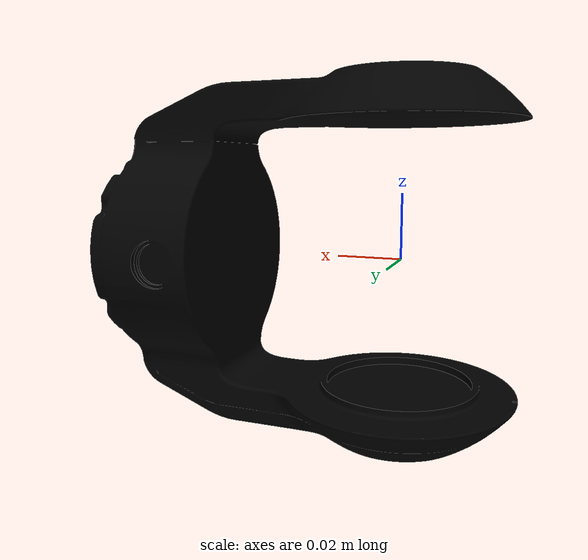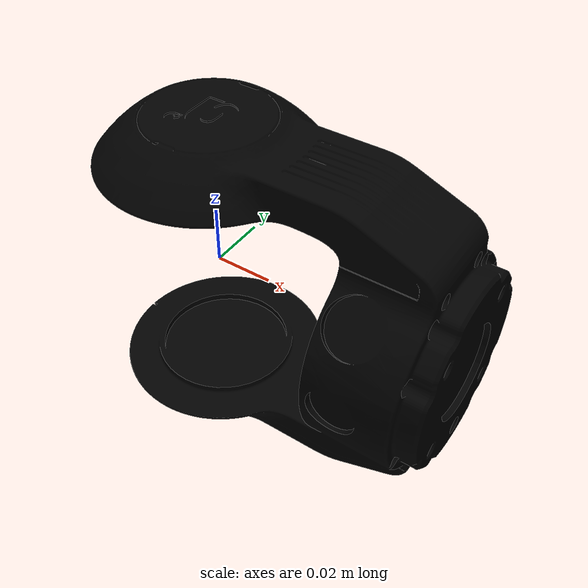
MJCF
<mujoco model="arm_r_link7">
  <default>
    <default class="visual">
      <geom group="2" type="mesh" contype="0" conaffinity="0"/>
    </default>
    <default class="collision">
      <geom group="3" type="mesh"/>
    </default>
  </default>
  <asset>
    <material name="material_arm_r_link7_0" specular="0.20000000000000004" shininess="1.0" rgba="0.00000000 0.00000000 0.00000000 1.0"/>
    <mesh file="arm_r_link7.obj"/>
  </asset>
  <worldbody>
    <body name="arm_r_link7">
      <geom material="material_arm_r_link7_0" mesh="arm_r_link7" class="visual"/>
      <geom mesh="arm_r_link7" class="collision"/>
    </body>
  </worldbody>
</mujoco>
